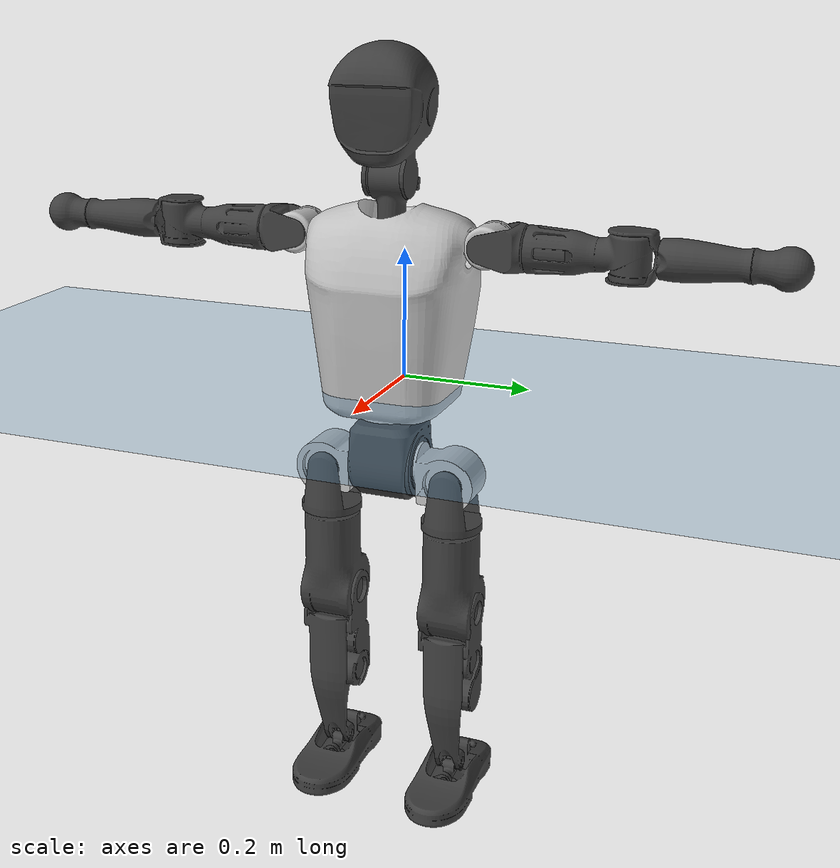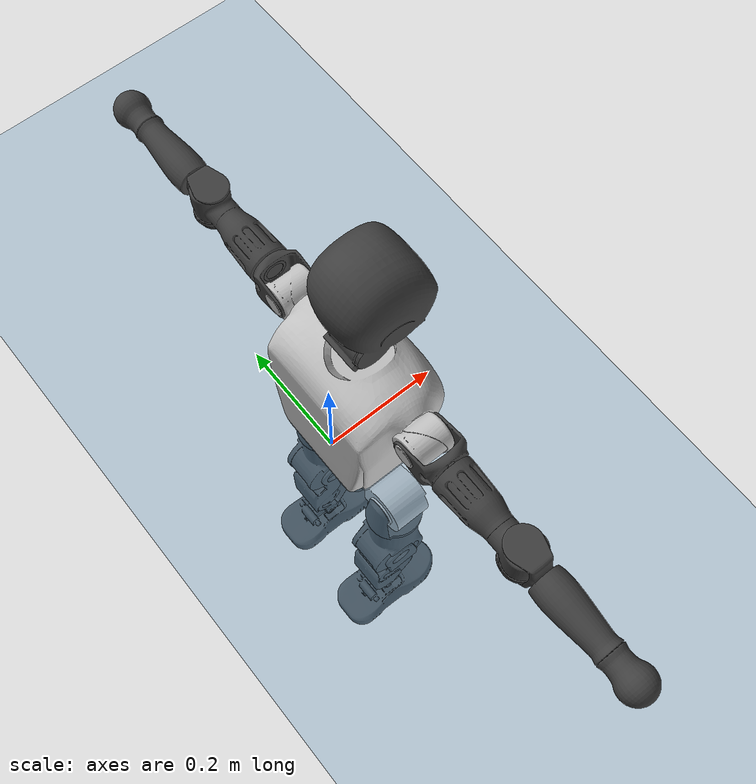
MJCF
<mujoco model="T1">
  <compiler angle="radian" assetdir="assets" balanceinertia="true" inertiafromgeom="false"/>

  <option timestep="0.005" density="1.2" viscosity="2e-05"/>

  <size nkey="1"/>

  <visual>
    <quality shadowsize="8192"/>
    <map shadowclip="0.5"/>
  </visual>

  <default>
    <default class="/">
      <joint armature="0.01" damping="0.01" frictionloss="0.1"/>
      <geom contype="0" conaffinity="0" group="1" solref="-1000 -80"/>
      <site size="0.01 0.005 0.005" group="5"/>
      <general forcelimited="true" biastype="affine" gainprm="25" biasprm="0 -25 -0.6"/>
      <default class="t1">
        <geom rgba="0.25 0.25 0.25 1"/>
        <default class="visual">
          <geom type="mesh" group="2"/>
        </default>
        <default class="collision">
          <geom group="3"/>
        </default>
        <default class="foot">
          <geom size="0.1115 0.05 0.015" type="box" condim="6" group="4" priority="1" solimp="0.015 1 0.015"/>
        </default>
        <default class="reward_collision_sphere">
          <geom group="5" rgba="1 0 0 1"/>
        </default>
      </default>
    </default>
  </default>

  <asset>
    <texture type="skybox" colorspace="auto" name="//unnamed_texture_0" builtin="gradient" rgb1="0.95 0.95 0.95" rgb2="0.95 0.95 0.95" width="100" height="600"/>
    <texture type="2d" colorspace="auto" name="texplane" builtin="checker" rgb1="0.345 0.575 0.748" rgb2="0.345 0.575 0.748" markrgb="1 1 1" width="512" height="512"/>
    <material name="MatPlane" class="/" texture="texplane" texuniform="true" texrepeat="2 2" specular="0.9"/>
    <mesh name="Trunk" class="/" file="Trunk.stl"/>
    <mesh name="H1" class="/" file="H1.stl"/>
    <mesh name="H2" class="/" file="H2.stl"/>
    <mesh name="AL1" class="/" file="AL1.stl"/>
    <mesh name="AL2" class="/" file="AL2.stl"/>
    <mesh name="AL3" class="/" file="AL3.stl"/>
    <mesh name="left_hand_link" class="/" file="left_hand_link.stl"/>
    <mesh name="AR1" class="/" file="AR1.stl"/>
    <mesh name="AR2" class="/" file="AR2.stl"/>
    <mesh name="AR3" class="/" file="AR3.stl"/>
    <mesh name="right_hand_link" class="/" file="right_hand_link.stl"/>
    <mesh name="Waist" class="/" file="Waist.stl"/>
    <mesh name="Hip_Pitch_Left" class="/" file="Hip_Pitch_Left.stl"/>
    <mesh name="Hip_Roll_Left" class="/" file="Hip_Roll_Left.stl"/>
    <mesh name="Hip_Yaw_Left" class="/" file="Hip_Yaw_Left.stl"/>
    <mesh name="Shank_Left" class="/" file="Shank_Left.stl"/>
    <mesh name="Ankle_Cross_Left" class="/" file="Ankle_Cross_Left.stl"/>
    <mesh name="left_foot_link" class="/" file="left_foot_link.stl"/>
    <mesh name="Hip_Pitch_Right" class="/" file="Hip_Pitch_Right.stl"/>
    <mesh name="Hip_Roll_Right" class="/" file="Hip_Roll_Right.stl"/>
    <mesh name="Hip_Yaw_Right" class="/" file="Hip_Yaw_Right.stl"/>
    <mesh name="Shank_Right" class="/" file="Shank_Right.stl"/>
    <mesh name="Ankle_Cross_Right" class="/" file="Ankle_Cross_Right.stl"/>
    <mesh name="right_foot_link" class="/" file="right_foot_link.stl"/>
  </asset>

  <worldbody>
    <geom name="floor" class="/" size="100 100 0.125" type="plane" group="0" material="MatPlane"/>
    <light name="toplight_shadow" class="/" pos="0 0 5" dir="0.0990148 0.0990148 -0.990148" type="directional" ambient="0.04 0.04 0.04" diffuse="0.55 0.55 0.55" specular="0.12 0.12 0.12"/>
    <light name="toplight_fill" class="/" pos="0 0 5" dir="0.0990148 0.0990148 -0.990148" type="directional" castshadow="false" ambient="0.04 0.04 0.04" diffuse="0.3 0.3 0.3" specular="0.08 0.08 0.08"/>
    <body name="trunk" childclass="t1" pos="-9.33341e-05 0.000946605 9.94941e-05" quat="1 -3.07092e-05 2.68388e-05 2.41305e-05">
      <inertial pos="0.049321 0.000237068 0.108952" quat="0.99996 3.44656e-05 -0.00891483 -0.000351446" mass="10.5114" diaginertia="0.054635 0.0628274 0.0676574"/>
      <joint name="//unnamed_joint_0" type="free" armature="0" damping="0" frictionloss="0"/>
      <geom name="//unnamed_geom_1" class="visual" rgba="0.76 0.76 0.76 1" mesh="Trunk"/>
      <geom name="//unnamed_geom_2" class="collision" size="0.0722634 0.0963512 0.144527" pos="0.0537215 0 0.124335" type="box"/>
      <geom name="//unnamed_geom_3" class="reward_collision_sphere" size="0.110804" pos="0.0537215 0 0.103613"/>
      <geom name="//unnamed_geom_4" class="reward_collision_sphere" size="0.0144527" pos="0.0537215 0.0815193 0"/>
      <geom name="//unnamed_geom_5" class="reward_collision_sphere" size="0.0144527" pos="0.0537215 -0.0815193 0"/>
      <geom name="//unnamed_geom_6" class="reward_collision_sphere" size="0.0144527" pos="0.0537215 0.102618 0.186503"/>
      <geom name="//unnamed_geom_7" class="reward_collision_sphere" size="0.0144527" pos="0.0537215 -0.102618 0.186503"/>
      <site name="imu" pos="-0.00121219 -0.00016556 0.00153679" size="0.00963512"/>
      <camera name="track" pos="0 -1.9181 0" quat="0.707107 0.707107 0 0" mode="trackcom"/>
      <camera name="ego_camera" pos="0.109234 0 0.435173" quat="-0.5 -0.5 0.5 0.5"/>
      <body name="H1" pos="0.0549286 -0.000172913 0.250326" quat="1 6.77334e-05 -4.93299e-05 -3.19035e-05">
        <inertial pos="-0.00142003 -0.00180055 0.0594621" quat="0.763854 -0.0135731 0.0011315 0.645246" mass="0.40092" diaginertia="0.000140835 0.000181092 0.000179706"/>
        <joint name="AAHead_yaw" pos="0 0 0" axis="-0.00190595 0.00119042 0.999997" range="-1.57528 1.56698" armature="0.0101868" damping="0.0122304" frictionloss="0.10079"/>
        <geom name="//unnamed_geom_8" class="visual" mesh="H1"/>
        <body name="H2" pos="0.000650899 -0.00213252 0.0642834" quat="1 -0.000318831 -0.000256467 0.000145745">
          <inertial pos="0.00642929 8.39149e-05 0.100589" quat="0.988585 0.105917 -0.0747751 -0.0767491" mass="0.557677" diaginertia="0.00117877 0.00153011 0.00206453"/>
          <joint name="Head_pitch" pos="0 0 0" axis="0.00279302 -0.999995 -0.00119291" range="-1.21634 0.351105" armature="0.00925723" damping="0.00111292" frictionloss="0.0988828"/>
          <geom name="//unnamed_geom_9" class="visual" mesh="H2"/>
          <geom name="//unnamed_geom_10" class="collision" size="0.0770809" pos="0.00895359 0 0.113974"/>
          <geom name="//unnamed_geom_11" class="reward_collision_sphere" size="0.086716" pos="0.0179072 0 0.103613"/>
        </body>
      </body>
      <body name="AL1" pos="0.0526391 0.102291 0.225955" quat="1 -0.00074273 0.000503044 0.000245733">
        <inertial pos="-0.000173462 0.0431099 -6.93068e-06" quat="0.504271 0.4958 -0.503861 0.496002" mass="0.479225" diaginertia="0.00079655 0.00104265 0.000351114"/>
        <joint name="Left_Shoulder_Pitch" pos="0 0 0" axis="-6.97642e-05 0.999998 -0.00197766" stiffness="0.000591755" range="-3.29108 1.24871" armature="0.00963254" damping="0" frictionloss="0.0918994"/>
        <geom name="//unnamed_geom_12" class="visual" rgba="0.76 0.76 0.76 1" mesh="AL1"/>
        <body name="AL2" pos="0.000328897 0.0446906 -0.000409672" quat="1 -2.07518e-05 1.4277e-07 -2.83827e-06">
          <inertial pos="0.00420054 0.0373169 0.000652419" quat="0.490074 0.511422 -0.486902 0.511079" mass="0.141253" diaginertia="0.000227823 0.00027847 0.00021137"/>
          <joint name="Left_Shoulder_Roll" pos="0 0 0" axis="-0.999999 -0.00151605 0.000723912" range="-1.59127 1.73483" armature="0.0102629" damping="0.00607828" frictionloss="0.0964349"/>
          <geom name="//unnamed_geom_13" class="visual" mesh="AL2"/>
          <body name="AL3" pos="9.51501e-05 0.0586927 -0.000409077" quat="1 9.4385e-05 -9.01285e-05 0.000100613">
            <inertial pos="0.000364104 0.0806359 -0.000895309" quat="0.706739 0.707462 0.00285956 0.00310835" mass="0.899288" diaginertia="0.00744012 0.0103459 0.000740867"/>
            <joint name="Left_Elbow_Pitch" pos="0 0 0" axis="-0.00457757 -0.999987 0.00214281" stiffness="0.00323286" range="-2.30289 2.28804" armature="0.0105562" damping="0.00770945" frictionloss="0.097851"/>
            <geom name="//unnamed_geom_14" class="visual" mesh="AL3"/>
            <geom name="//unnamed_geom_15" class="collision" size="0.0289053 0.0722634" pos="0 0.0479525 0" quat="0.707105 0.707108 0 0" type="cylinder"/>
            <geom name="//unnamed_geom_16" class="reward_collision_sphere" size="0.0346864"/>
            <body name="left_hand_link" pos="0.000568396 0.141785 0.00116348" quat="1 1.03622e-06 -0.000129698 0.000635617">
              <inertial pos="-0.00142066 0.104201 0.000238415" quat="0.707803 0.70641 -0.00034335 -9.80844e-05" mass="0.293161" diaginertia="0.00465428 0.00652934 0.000259842"/>
              <joint name="Left_Elbow_Yaw" pos="0 0 0" axis="0.00141026 -0.00477814 0.999988" range="-2.44113 -0.0288624" armature="0.00938868" damping="0.00802396" frictionloss="0.0950974"/>
              <geom name="//unnamed_geom_17" class="visual" mesh="left_hand_link"/>
              <geom name="//unnamed_geom_18" class="collision" size="0.0289053 0.0843073" pos="0 0.124677 0" quat="0.707105 0.707108 0 0" type="cylinder"/>
              <geom name="//unnamed_geom_19" class="reward_collision_sphere" size="0.0481756"/>
              <geom name="//unnamed_geom_20" class="reward_collision_sphere" size="0.0337229" pos="0 0.105496 0"/>
              <geom name="//unnamed_geom_21" class="reward_collision_sphere" size="0.0337229" pos="0 0.206196 0"/>
            </body>
          </body>
        </body>
      </body>
      <body name="AR1" pos="0.0501671 -0.101748 0.226864" quat="1 0.000203102 0.000519722 -0.000413542">
        <inertial pos="-0.000428457 -0.045264 -0.000215982" quat="0.504523 0.493746 -0.503213 0.498446" mass="0.467654" diaginertia="0.00079077 0.00104297 0.000343227"/>
        <joint name="Right_Shoulder_Pitch" pos="0 0 0" axis="0.00146909 -0.999981 0.00590273" range="-1.22675 3.32808" armature="0.00992121" damping="0.0114986" frictionloss="0.10101"/>
        <geom name="//unnamed_geom_22" class="visual" rgba="0.76 0.76 0.76 1" mesh="AR1"/>
        <body name="AR2" pos="0.000883179 -0.0445225 0.000752462" quat="1 0.000584035 -0.000163402 0.000215744">
          <inertial pos="0.00403223 -0.0363159 0.00062219" quat="0.512447 0.486328 -0.50909 0.491641" mass="0.141345" diaginertia="0.000230979 0.000283713 0.000210793"/>
          <joint name="Right_Shoulder_Roll" pos="0 0 0" axis="-0.999974 0.000219234 0.00727382" range="-1.7567 1.55558" armature="0.00971095" damping="0.00343744" frictionloss="0.105126"/>
          <geom name="//unnamed_geom_23" class="visual" mesh="AR2"/>
          <body name="AR3" pos="-0.00104656 -0.059109 -0.00208547" quat="1 -5.63545e-05 3.92801e-05 -7.87233e-05">
            <inertial pos="-0.000400598 -0.0829319 0.000919064" quat="0.708363 0.705841 0.0027161 -0.00181105" mass="0.914315" diaginertia="0.00743362 0.0104155 0.000750021"/>
            <joint name="Right_Elbow_Pitch" pos="0 0 0" axis="0.00151917 0.999995 0.00270553" range="-2.28684 2.28378" armature="0.00910208" damping="0.0104792" frictionloss="0.0936949"/>
            <geom name="//unnamed_geom_24" class="visual" mesh="AR3"/>
            <geom name="//unnamed_geom_25" class="collision" size="0.0289053 0.0722634" pos="0 -0.0479525 0" quat="0.707105 0.707108 0 0" type="cylinder"/>
            <geom name="//unnamed_geom_26" class="reward_collision_sphere" size="0.0346864"/>
            <body name="right_hand_link" pos="-0.000150284 -0.140779 0.000330886" quat="1 3.98277e-06 -1.84685e-05 2.4212e-05">
              <inertial pos="-0.000215758 -0.10394 0.00220807" quat="0.706316 0.707897 3.23013e-05 -2.89601e-05" mass="0.294583" diaginertia="0.00472934 0.00668715 0.000260123"/>
              <joint name="Right_Elbow_Yaw" pos="0 0 0" axis="0.000543815 0.00532363 0.999986" stiffness="0.000410381" range="0.00215305 2.42642" armature="0.0100145" damping="0" frictionloss="0.0956389"/>
              <geom name="//unnamed_geom_27" class="visual" mesh="right_hand_link"/>
              <geom name="//unnamed_geom_28" class="collision" size="0.0289053 0.0843073" pos="0 -0.124677 0" quat="0.707105 0.707108 0 0" type="cylinder"/>
              <geom name="//unnamed_geom_29" class="reward_collision_sphere" size="0.0481756"/>
              <geom name="//unnamed_geom_30" class="reward_collision_sphere" size="0.0337229" pos="0 -0.105496 0"/>
              <geom name="//unnamed_geom_31" class="reward_collision_sphere" size="0.0337229" pos="0 -0.206196 0"/>
            </body>
          </body>
        </body>
      </body>
      <body name="Waist" pos="0.0567634 -0.00158752 -0.117892" quat="1 0.000424847 -1.61e-05 -0.000191194">
        <inertial pos="0.00121968 -0.000419373 0.00808725" quat="0.98306 0.00209591 -0.183234 0.00377265" mass="2.25599" diaginertia="0.00304031 0.00419299 0.0055234"/>
        <joint name="Waist" pos="0 0 0" axis="-0.00330623 0.00382802 0.999987" range="-1.56283 1.5538" armature="0.00952194" damping="0.00940358" frictionloss="0.0995779"/>
        <geom name="//unnamed_geom_32" class="visual" mesh="Waist"/>
        <body name="Hip_Pitch_Left" pos="0.00181067 0.100703 -0.000222716" quat="1 0.00010385 0.000699203 8.24255e-05">
          <inertial pos="0.000726953 -0.00642274 -0.018788" quat="0.975107 0.221231 0.0147799 0.00210088" mass="0.903887" diaginertia="0.00104299 0.00120281 0.00148138"/>
          <joint name="Left_Hip_Pitch" pos="0 0 0" axis="-0.0113043 0.999936 0.00108669" range="-1.79601 1.59934" armature="0.00924795" damping="0.00571612" frictionloss="0.0979295"/>
          <geom name="//unnamed_geom_33" class="visual" rgba="0.76 0.76 0.76 1" mesh="Hip_Pitch_Left"/>
          <body name="Hip_Roll_Left" pos="0.00114002 0.00180342 -0.0207919" quat="0.999999 -0.000178425 0.000396572 0.000983944">
            <inertial pos="0.000912919 -6.43492e-05 -0.0553176" quat="0.705555 -0.00620093 -0.00795936 0.708583" mass="0.336714" diaginertia="0.000995083 0.00120418 0.000602861"/>
            <joint name="Left_Hip_Roll" pos="0 0 0" axis="-0.999986 -0.00325567 0.0040917" range="-1.58769 0.208312" armature="0.0101153" damping="0.00761565" frictionloss="0.0948241"/>
            <geom name="//unnamed_geom_34" class="visual" mesh="Hip_Roll_Left"/>
            <geom name="//unnamed_geom_35" class="reward_collision_sphere" size="0.0529931"/>
            <body name="Hip_Yaw_Left" pos="8.55473e-05 0.000149581 -0.0843988" quat="1 0.000171599 0.000272095 0.000121193">
              <inertial pos="-0.00608678 -0.000489753 -0.092374" quat="0.698613 -0.0391682 -0.028283 0.713867" mass="1.93649" diaginertia="0.0146737 0.0201474 0.00305796"/>
              <joint name="Left_Hip_Yaw" pos="0 0 0" axis="4.78693e-05 0.000171851 -1" stiffness="0.000668816" range="-1.00524 1.01099" armature="0.00966709" damping="0.00452461" frictionloss="0.0978194"/>
              <geom name="//unnamed_geom_36" class="visual" mesh="Hip_Yaw_Left"/>
              <geom name="//unnamed_geom_37" class="collision" size="0.0481756 0.0770809" type="cylinder"/>
              <body name="Shank_Left" pos="-0.0107993 -0.000488115 -0.13855" quat="1 3.10937e-05 -0.000250518 -0.000174923">
                <inertial pos="-0.00457122 0.000373621 -0.129151" quat="0.997477 0.00259641 -0.0238334 0.0668216" mass="1.51733" diaginertia="0.0197625 0.0278756 0.00216954"/>
                <joint name="Left_Knee_Pitch" pos="0 0 0" axis="0.00394955 0.999991 0.00164782" range="-0.0140458 2.35935" armature="0.0100747" damping="0.00877369" frictionloss="0.096694"/>
                <geom name="//unnamed_geom_38" class="visual" mesh="Shank_Left"/>
                <geom name="//unnamed_geom_39" class="collision" size="0.0481756 0.0722634" pos="0 0 -0.124335" type="cylinder"/>
                <geom name="//unnamed_geom_40" class="reward_collision_sphere" size="0.0626283"/>
                <body name="Ankle_Cross_Left" pos="-0.000610592 -4.48122e-05 -0.290634" quat="1 -0.000224976 -0.000474619 0.000140719">
                  <inertial pos="-0.00219016 -0.00151054 -0.00879096" quat="0.443126 0.551126 0.55096 0.443107" mass="0.0655713" diaginertia="1.67822e-05 2.10521e-05 1.354e-05"/>
                  <joint name="Left_Ankle_Pitch" pos="0 0 0" axis="-0.000329721 1 0.000360246" stiffness="0.00288343" range="-0.861741 0.338846" armature="0.010136" damping="0.00950331" frictionloss="0.0977405"/>
                  <geom name="//unnamed_geom_41" class="visual" mesh="Ankle_Cross_Left"/>
                  <body name="left_foot_link" pos="-0.000691968 -0.00129484 -0.0122381" quat="1 3.18305e-05 -4.00828e-05 -5.08662e-06">
                    <inertial pos="0.000628253 -0.000173313 -0.00767663" quat="-0.000187407 0.62097 0.000313247 0.783835" mass="0.615305" diaginertia="0.00154967 0.00194631 0.00264085"/>
                    <joint name="Left_Ankle_Roll" pos="0 0 0" axis="-0.999995 -0.00288441 0.00141773" range="-0.439003 0.437244" armature="0.0091998" damping="0.0139259" frictionloss="0.097037"/>
                    <geom name="//unnamed_geom_42" class="visual" mesh="left_foot_link"/>
                    <geom name="left_foot" class="foot" size="0.112074 0.0486122 0.0143896" pos="0.00895359 0 -0.0155419"/>
                    <geom name="//unnamed_geom_44" class="reward_collision_sphere" size="0.0501026" pos="0.00895359 0 -0.0155419"/>
                    <geom name="//unnamed_geom_45" class="reward_collision_sphere" size="0.0289053" pos="0.0850591 -0.0220582 -0.0155419"/>
                    <geom name="//unnamed_geom_46" class="reward_collision_sphere" size="0.0289053" pos="-0.0626751 -0.0220582 -0.0155419"/>
                    <site name="left_foot" class="foot" pos="0.00895359 0 -0.0155419" size="0.00963512"/>
                  </body>
                </body>
              </body>
            </body>
          </body>
        </body>
        <body name="Hip_Pitch_Right" pos="-0.000923435 -0.102748 0.000368515" quat="0.999999 -6.71401e-06 0.000581542 0.00100523">
          <inertial pos="-2.3562e-05 0.00526214 -0.0186006" quat="0.973805 -0.226949 0.0123711 -0.00668533" mass="0.892063" diaginertia="0.00102264 0.00116784 0.00148144"/>
          <joint name="Right_Hip_Pitch" pos="0 0 0" axis="-0.000697584 -1 0.000241777" range="-1.56636 1.80438" armature="0.0100998" damping="0.00932705" frictionloss="0.103431"/>
          <geom name="//unnamed_geom_47" class="visual" rgba="0.76 0.76 0.76 1" mesh="Hip_Pitch_Right"/>
          <body name="Hip_Roll_Right" pos="-0.000319208 0.00154809 -0.0192904" quat="1 -7.23482e-05 -0.000161618 -1.1945e-05">
            <inertial pos="3.50524e-05 0.00146953 -0.0570328" quat="0.710501 -0.0057839 -0.00611987 0.703646" mass="0.337967" diaginertia="0.00098658 0.00121934 0.00060988"/>
            <joint name="Right_Hip_Roll" pos="0 0 0" axis="-0.999999 -0.000396957 0.00143864" range="-0.203406 1.5715" armature="0.0091679" damping="0.0107025" frictionloss="0.0987688"/>
            <geom name="//unnamed_geom_48" class="visual" mesh="Hip_Roll_Right"/>
            <geom name="//unnamed_geom_49" class="reward_collision_sphere" size="0.0529931"/>
            <body name="Hip_Yaw_Right" pos="-0.000115182 0.000402929 -0.0841266" quat="1 6.18714e-05 -0.000294741 -0.000152011">
              <inertial pos="-0.00677434 0.000127334 -0.0926734" quat="0.714471 -0.0313501 -0.0336484 0.698152" mass="1.90252" diaginertia="0.0147997 0.0203673 0.003126"/>
              <joint name="Right_Hip_Yaw" pos="0 0 0" axis="0.00188355 0.000240397 -0.999998" stiffness="0.00130921" range="-1.00582 0.99446" armature="0.00872787" damping="0.0105328" frictionloss="0.102114"/>
              <geom name="//unnamed_geom_50" class="visual" mesh="Hip_Yaw_Right"/>
              <geom name="//unnamed_geom_51" class="collision" size="0.0481756 0.0770809" type="cylinder"/>
              <body name="Shank_Right" pos="-0.0139192 0.000663216 -0.138817" quat="1 -0.000464384 -0.000134902 -0.000332584">
                <inertial pos="-0.00552776 -0.000176032 -0.125668" quat="0.999267 0.000206817 -0.0229842 -0.0306124" mass="1.59548" diaginertia="0.0204124 0.0282812 0.00240017"/>
                <joint name="Right_Knee_Pitch" pos="0 0 0" axis="0.00487774 -0.999956 -0.00798141" range="-2.33201 -0.0132728" armature="0.00942009" damping="0.00730922" frictionloss="0.100411"/>
                <geom name="//unnamed_geom_52" class="visual" mesh="Shank_Right"/>
                <geom name="//unnamed_geom_53" class="collision" size="0.0481756 0.0722634" pos="0 0 -0.124335" type="cylinder"/>
                <geom name="//unnamed_geom_54" class="reward_collision_sphere" size="0.0626283"/>
                <body name="Ankle_Cross_Right" pos="-0.00064471 -0.00139523 -0.290098" quat="1 -0.000644075 5.51903e-05 -0.00065255">
                  <inertial pos="-0.00249232 0.000859719 -0.00821131" quat="0.441535 0.554706 0.549835 0.441622" mass="0.0651301" diaginertia="1.66297e-05 2.0783e-05 1.34539e-05"/>
                  <joint name="Right_Ankle_Pitch" pos="0 0 0" axis="-0.0013286 -0.999994 0.00318632" stiffness="0.00139477" range="-0.361573 0.870595" armature="0.00964663" damping="0.00933321" frictionloss="0.0938177"/>
                  <geom name="//unnamed_geom_55" class="visual" mesh="Ankle_Cross_Right"/>
                  <body name="right_foot_link" pos="-0.000335851 -0.00207244 -0.0114783" quat="1 -3.30868e-05 -1.14124e-05 1.21919e-05">
                    <inertial pos="-0.000313368 -0.000697438 -0.00986604" quat="-0.000241484 0.621013 -0.000140032 0.783801" mass="0.617117" diaginertia="0.00155576 0.00193652 0.00262128"/>
                    <joint name="Right_Ankle_Roll" pos="0 0 0" axis="-0.999997 -0.00200967 -0.00136296" range="-0.40107 0.434096" armature="0.00993737" damping="0.00939894" frictionloss="0.0976123"/>
                    <geom name="//unnamed_geom_56" class="visual" mesh="right_foot_link"/>
                    <geom name="right_foot" class="foot" size="0.0976785 0.0486984 0.0144681" pos="0.00895359 0 -0.0155419"/>
                    <geom name="//unnamed_geom_58" class="reward_collision_sphere" size="0.0385405"/>
                    <geom name="//unnamed_geom_59" class="reward_collision_sphere" size="0.0289053" pos="0.00895359 0 -0.0155419"/>
                    <geom name="//unnamed_geom_60" class="reward_collision_sphere" size="0.0289053" pos="0.0850591 0.0220582 -0.0155419"/>
                    <geom name="//unnamed_geom_61" class="reward_collision_sphere" size="0.0289053" pos="-0.0626751 0.0220582 -0.0155419"/>
                    <site name="right_foot" class="foot" pos="0.00895359 0 -0.0155419" size="0.00963512"/>
                  </body>
                </body>
              </body>
            </body>
          </body>
        </body>
      </body>
    </body>
  </worldbody>

  <contact>
    <pair class="/" geom1="floor" geom2="left_foot" name="//unnamed_contact_0"/>
    <pair class="/" geom1="floor" geom2="right_foot" name="//unnamed_contact_1"/>
  </contact>

  <actuator>
    <general name="AAHead_yaw" class="/" joint="AAHead_yaw" forcerange="-6.94814 6.94814" gainprm="24.0158" biasprm="0 -24.0158 -0.575239"/>
    <general name="Head_pitch" class="/" joint="Head_pitch" forcerange="-6.65312 6.65312" gainprm="24.0158" biasprm="0 -24.0158 -0.575239"/>
    <general name="Left_Shoulder_Pitch" class="/" joint="Left_Shoulder_Pitch" forcerange="-16.9634 16.9634" gainprm="24.0158" biasprm="0 -24.0158 -0.575239"/>
    <general name="Left_Shoulder_Roll" class="/" joint="Left_Shoulder_Roll" forcerange="-17.6015 17.6015" gainprm="24.0158" biasprm="0 -24.0158 -0.575239"/>
    <general name="Left_Elbow_Pitch" class="/" joint="Left_Elbow_Pitch" forcerange="-17.2121 17.2121" gainprm="24.0158" biasprm="0 -24.0158 -0.575239"/>
    <general name="Left_Elbow_Yaw" class="/" joint="Left_Elbow_Yaw" forcerange="-17.1838 17.1838" gainprm="24.0158" biasprm="0 -24.0158 -0.575239"/>
    <general name="Right_Shoulder_Pitch" class="/" joint="Right_Shoulder_Pitch" forcerange="-17.4364 17.4364" gainprm="24.0158" biasprm="0 -24.0158 -0.575239"/>
    <general name="Right_Shoulder_Roll" class="/" joint="Right_Shoulder_Roll" forcerange="-17.7779 17.7779" gainprm="24.0158" biasprm="0 -24.0158 -0.575239"/>
    <general name="Right_Elbow_Pitch" class="/" joint="Right_Elbow_Pitch" forcerange="-17.3162 17.3162" gainprm="24.0158" biasprm="0 -24.0158 -0.575239"/>
    <general name="Right_Elbow_Yaw" class="/" joint="Right_Elbow_Yaw" forcerange="-17.3264 17.3264" gainprm="24.0158" biasprm="0 -24.0158 -0.575239"/>
    <general name="Waist" class="/" joint="Waist" forcerange="-28.4303 28.4303" gainprm="24.0158" biasprm="0 -24.0158 -0.575239"/>
    <general name="Left_Hip_Pitch" class="/" joint="Left_Hip_Pitch" forcerange="-44.2212 44.2212" gainprm="24.0158" biasprm="0 -24.0158 -0.575239"/>
    <general name="Left_Hip_Roll" class="/" joint="Left_Hip_Roll" forcerange="-29.2436 29.2436" gainprm="24.0158" biasprm="0 -24.0158 -0.575239"/>
    <general name="Left_Hip_Yaw" class="/" joint="Left_Hip_Yaw" forcerange="-28.6658 28.6658" gainprm="24.0158" biasprm="0 -24.0158 -0.575239"/>
    <general name="Left_Knee_Pitch" class="/" joint="Left_Knee_Pitch" forcerange="-56.3774 56.3774" gainprm="24.0158" biasprm="0 -24.0158 -0.575239"/>
    <general name="Left_Ankle_Pitch" class="/" joint="Left_Ankle_Pitch" forcerange="-20.4593 20.4593" gainprm="24.0158" biasprm="0 -24.0158 -0.575239"/>
    <general name="Left_Ankle_Roll" class="/" joint="Left_Ankle_Roll" forcerange="-13.4372 13.4372" gainprm="24.0158" biasprm="0 -24.0158 -0.575239"/>
    <general name="Right_Hip_Pitch" class="/" joint="Right_Hip_Pitch" forcerange="-43.0593 43.0593" gainprm="24.0158" biasprm="0 -24.0158 -0.575239"/>
    <general name="Right_Hip_Roll" class="/" joint="Right_Hip_Roll" forcerange="-28.4998 28.4998" gainprm="24.0158" biasprm="0 -24.0158 -0.575239"/>
    <general name="Right_Hip_Yaw" class="/" joint="Right_Hip_Yaw" forcerange="-30.3285 30.3285" gainprm="24.0158" biasprm="0 -24.0158 -0.575239"/>
    <general name="Right_Knee_Pitch" class="/" joint="Right_Knee_Pitch" forcerange="-57.0328 57.0328" gainprm="24.0158" biasprm="0 -24.0158 -0.575239"/>
    <general name="Right_Ankle_Pitch" class="/" joint="Right_Ankle_Pitch" forcerange="-19.2273 19.2273" gainprm="24.0158" biasprm="0 -24.0158 -0.575239"/>
    <general name="Right_Ankle_Roll" class="/" joint="Right_Ankle_Roll" forcerange="-14.3384 14.3384" gainprm="24.0158" biasprm="0 -24.0158 -0.575239"/>
  </actuator>

  <sensor>
    <gyro site="imu" name="imu_angular_velocity"/>
    <velocimeter site="imu" name="imu_linear_velocity"/>
    <framelinvel objtype="site" objname="left_foot" name="left_foot_global_linear_velocity"/>
    <framelinvel objtype="site" objname="right_foot" name="right_foot_global_linear_velocity"/>
  </sensor>

  <keyframe>
    <key name="home" qpos="0 0 0.6385 1 0 0 0 0 0 0 1.4 0 -0.4 0 -1.4 0 0.4 0 -0.4 0 0 0.8 -0.4 0 0.4 0 0 -0.8 0.4 0"/>
  </keyframe>
</mujoco>
